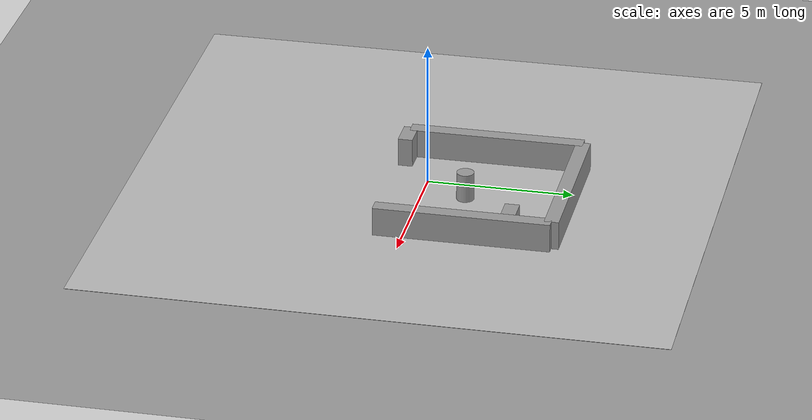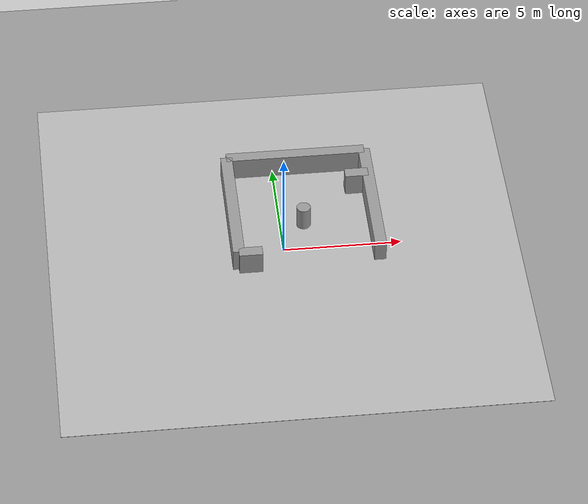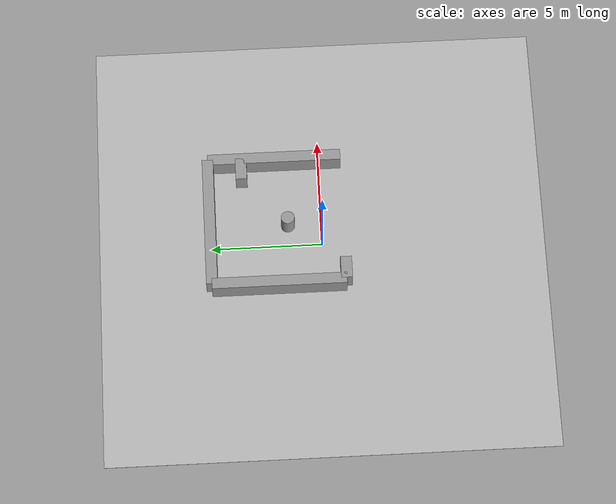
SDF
<sdf version="1.4">
 <world name="default">
  <light name="sun" type="directional">
   <pose>0 0 10 0 -0 0</pose>
   <diffuse>0.8 0.8 0.8 1</diffuse>
   <specular>0.2 0.2 0.2 1</specular>
   <attenuation>
    <range>1000</range>
    <constant>0.9</constant>
    <linear>0.01</linear>
    <quadratic>0.001</quadratic>
   </attenuation>
   <direction>0.5 0.1 -0.9</direction>
  </light>
  <scene><ambient>0.4 0.4 0.4 1</ambient><background>0.7 0.7 0.7 1</background><shadows>1</shadows></scene>
  <physics type="ode">
   <max_step_size>0.01</max_step_size>
   <real_time_factor>1</real_time_factor>
   <real_time_update_rate>100</real_time_update_rate>
   <gravity>0 0 -9.8</gravity>
  </physics>
  <model name="ground_plane_0">
   <static>1</static>
   <link name="link">
    <collision name="collision">
     <geometry><plane><normal>0 0 1</normal><size>100 100</size></plane></geometry>
     <surface><friction><ode><mu>100</mu><mu2>50</mu2></ode></friction></surface>
    </collision>
    <visual name="visual">
     <cast_shadows>0</cast_shadows>
     <geometry><plane><normal>0 0 1</normal><size>100 100</size></plane></geometry>
     <material>
      <script><uri>file://media/materials/scripts/gazebo.material</uri><name>Gazebo/Grey</name></script>
     </material>
    </visual>
    <velocity_decay><linear>0</linear><angular>0</angular></velocity_decay>
   </link>
  </model>
  <spherical_coordinates>
   <surface_model>EARTH_WGS84</surface_model>
   <latitude_deg>0</latitude_deg>
   <longitude_deg>0</longitude_deg>
   <elevation>0</elevation>
   <heading_deg>0</heading_deg>
  </spherical_coordinates>
  <model name="asphalt_plane">
   <static>1</static>
   <link name="link">
    <collision name="collision"><geometry><box><size>20 20 0.01</size></box></geometry></collision>
    <visual name="visual">
     <cast_shadows>0</cast_shadows>
     <geometry><box><size>20 20 0.01</size></box></geometry>
     <material>
      <script>
       <uri>model://terrain_1/media/scripts</uri>
       <uri>model://terrain_1/media/Textures</uri>
       <name>RepeatedGrass/Diffuse</name>
      </script>
     </material>
    </visual>
    <velocity_decay><linear>0</linear><angular>0</angular></velocity_decay>
   </link>
  </model>
  <model name="rear_grey_wall">
   <static>1</static>
   <link name="link">
    <pose>0 0 0.5 0 -0 0</pose>
    <collision name="collision"><geometry><box><size>6 0.5 1</size></box></geometry></collision>
    <visual name="visual">
     <cast_shadows>0</cast_shadows>
     <geometry><box><size>6 0.5 1</size></box></geometry>
     <material>
      <script>
       <uri>model://grey_wall/materials/scripts</uri>
       <uri>model://grey_wall/materials/textures</uri>
       <name>vrc/grey_wall</name>
      </script>
     </material>
    </visual>
    <velocity_decay><linear>0</linear><angular>0</angular></velocity_decay>
   </link>
   <pose>1 5 0 0 -0 0</pose>
  </model>
  <model name="right_side_large_grey_wall">
   <static>1</static>
   <link name="link">
    <pose>0 0 0.5 0 -0 0</pose>
    <collision name="collision"><geometry><box><size>6 0.5 1</size></box></geometry></collision>
    <visual name="visual">
     <cast_shadows>0</cast_shadows>
     <geometry><box><size>6 0.5 1</size></box></geometry>
     <material>
      <script>
       <uri>model://grey_wall/materials/scripts</uri>
       <uri>model://grey_wall/materials/textures</uri>
       <name>vrc/grey_wall</name>
      </script>
     </material>
    </visual>
    <velocity_decay><linear>0</linear><angular>0</angular></velocity_decay>
   </link>
   <pose>4 2 0 0 -0 1.5708</pose>
  </model>
  <model name="left_side_large_grey_wall">
   <static>1</static>
   <link name="link">
    <pose>0 0 0.5 0 -0 0</pose>
    <collision name="collision"><geometry><box><size>6 0.5 1</size></box></geometry></collision>
    <visual name="visual">
     <cast_shadows>0</cast_shadows>
     <geometry><box><size>6 0.5 1</size></box></geometry>
     <material>
      <script>
       <uri>model://grey_wall/materials/scripts</uri>
       <uri>model://grey_wall/materials/textures</uri>
       <name>vrc/grey_wall</name>
      </script>
     </material>
    </visual>
    <velocity_decay><linear>0</linear><angular>0</angular></velocity_decay>
   </link>
   <pose>-2 2 0 0 -0 1.5708</pose>
  </model>
  <model name="grey_wall_stairs_side">
   <static>1</static>
   <link name="link">
    <pose>0 0 0.5 0 -0 0</pose>
    <collision name="collision"><geometry><box><size>1 0.5 1</size></box></geometry></collision>
    <visual name="visual">
     <cast_shadows>0</cast_shadows>
     <geometry><box><size>1 0.5 1</size></box></geometry>
     <material>
      <script>
       <uri>model://grey_wall/materials/scripts</uri>
       <uri>model://grey_wall/materials/textures</uri>
       <name>vrc/grey_wall</name>
      </script>
     </material>
    </visual>
    <velocity_decay><linear>0</linear><angular>0</angular></velocity_decay>
   </link>
   <pose>-1.5 -1 0 0 -0 0</pose>
  </model>
  <model name="grey_wall_starting_point_side">
   <static>1</static>
   <link name="link">
    <pose>0 0 0.5 0 -0 0</pose>
    <collision name="collision"><geometry><box><size>1 0.5 1</size></box></geometry></collision>
    <visual name="visual">
     <cast_shadows>0</cast_shadows>
     <geometry><box><size>1 0.5 1</size></box></geometry>
     <material>
      <script>
       <uri>model://grey_wall/materials/scripts</uri>
       <uri>model://grey_wall/materials/textures</uri>
       <name>vrc/grey_wall</name>
      </script>
     </material>
    </visual>
    <velocity_decay><linear>0</linear><angular>0</angular></velocity_decay>
   </link>
   <pose>3.5 3.5 0 0 -0 0</pose>
  </model>
  <model name="center_cylinder">
   <pose>1 1.5 0.5 0 0 0</pose>
   <link name="link">
    <inertial>
     <mass>1</mass>
     <inertia><ixx>1</ixx><ixy>0</ixy><ixz>0</ixz><iyy>1</iyy><iyz>0</iyz><izz>1</izz></inertia>
    </inertial>
    <collision name="collision">
     <geometry><cylinder><radius>0.3</radius><length>1</length></cylinder></geometry>
    </collision>
    <visual name="visual">
     <geometry><cylinder><radius>0.3</radius><length>1</length></cylinder></geometry>
     <material>
      <script><uri>file://media/materials/scripts/gazebo.material</uri><name>Gazebo/Grey</name></script>
     </material>
    </visual>
    <velocity_decay><linear>0</linear><angular>0</angular></velocity_decay>
   </link>
   <static>0</static>
  </model>
 </world>
</sdf>
